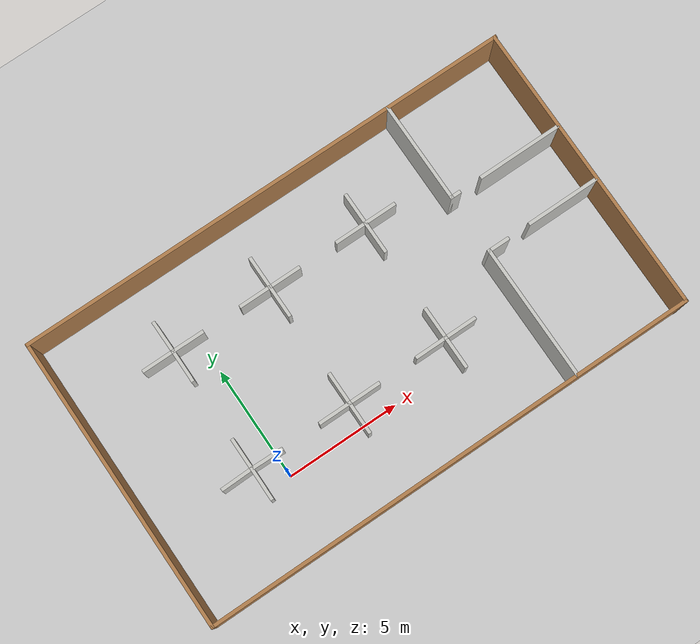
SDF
<sdf version="1.7">
 <world name="default">
  <light name="sun" type="directional">
   <pose>0 0 10 0 -0 0</pose>
   <diffuse>0.8 0.8 0.8 1</diffuse>
   <specular>0.2 0.2 0.2 1</specular>
   <attenuation>
    <range>1000</range>
    <constant>0.9</constant>
    <linear>0.01</linear>
    <quadratic>0.001</quadratic>
   </attenuation>
   <direction>-0.5 0.1 -0.9</direction>
   <spot><inner_angle>0</inner_angle><outer_angle>0</outer_angle><falloff>0</falloff></spot>
  </light>
  <model name="ground_plane">
   <static>1</static>
   <link name="link">
    <collision name="collision">
     <geometry><plane><normal>0 0 1</normal><size>100 100</size></plane></geometry>
     <surface>
      <contact><collide_bitmask>65535</collide_bitmask></contact>
      <friction><ode><mu>100</mu><mu2>50</mu2></ode></friction>
     </surface>
    </collision>
    <visual name="visual">
     <cast_shadows>0</cast_shadows>
     <geometry><plane><normal>0 0 1</normal><size>100 100</size></plane></geometry>
     <material>
      <script><uri>file://media/materials/scripts/gazebo.material</uri><name>Gazebo/Grey</name></script>
     </material>
    </visual>
   </link>
  </model>
  <gravity>0 0 -9.8</gravity>
  <magnetic_field>6e-06 2.3e-05 -4.2e-05</magnetic_field>
  <atmosphere type="adiabatic"/>
  <physics type="ode">
   <max_step_size>0.001</max_step_size>
   <real_time_factor>1</real_time_factor>
   <real_time_update_rate>1000</real_time_update_rate>
  </physics>
  <scene><ambient>0.4 0.4 0.4 1</ambient><background>0.7 0.7 0.7 1</background><shadows>1</shadows></scene>
  <audio><device>default</device></audio>
  <spherical_coordinates>
   <surface_model>EARTH_WGS84</surface_model>
   <latitude_deg>0</latitude_deg>
   <longitude_deg>0</longitude_deg>
   <elevation>0</elevation>
   <heading_deg>0</heading_deg>
  </spherical_coordinates>
  <model name="cubicaloffice">
   <pose>5.41592 3.24028 0 0 -0 0</pose>
   <link name="Wall_102">
    <collision name="Wall_102_Collision">
     <geometry><box><size>1.5 0.15 1.5</size></box></geometry>
     <pose>0 0 0.75 0 -0 0</pose>
    </collision>
    <visual name="Wall_102_Visual">
     <pose>0 0 0.75 0 -0 0</pose>
     <geometry><box><size>1.5 0.15 1.5</size></box></geometry>
     <material>
      <script><uri>file://media/materials/scripts/gazebo.material</uri><name>Gazebo/CeilingTiled</name></script>
      <ambient>1 1 1 1</ambient>
     </material>
     <meta><layer>0</layer></meta>
    </visual>
    <pose>1.91508 -2.29228 0 0 -0 0</pose>
   </link>
   <link name="Wall_103">
    <collision name="Wall_103_Collision">
     <geometry><box><size>1.5 0.15 1.5</size></box></geometry>
     <pose>0 0 0.75 0 -0 0</pose>
    </collision>
    <visual name="Wall_103_Visual">
     <pose>0 0 0.75 0 -0 0</pose>
     <geometry><box><size>1.5 0.15 1.5</size></box></geometry>
     <material>
      <script><uri>file://media/materials/scripts/gazebo.material</uri><name>Gazebo/CeilingTiled</name></script>
      <ambient>1 1 1 1</ambient>
     </material>
     <meta><layer>0</layer></meta>
    </visual>
    <pose>2.59009 -1.61728 0 0 -0 1.5708</pose>
   </link>
   <link name="Wall_105">
    <collision name="Wall_105_Collision">
     <geometry><box><size>1.5 0.15 1.5</size></box></geometry>
     <pose>0 0 0.75 0 -0 0</pose>
    </collision>
    <visual name="Wall_105_Visual">
     <pose>0 0 0.75 0 -0 0</pose>
     <geometry><box><size>1.5 0.15 1.5</size></box></geometry>
     <material>
      <script><uri>file://media/materials/scripts/gazebo.material</uri><name>Gazebo/CeilingTiled</name></script>
      <ambient>1 1 1 1</ambient>
     </material>
     <meta><layer>0</layer></meta>
    </visual>
    <pose>3.26509 -2.29228 0 0 -0 0</pose>
   </link>
   <link name="Wall_107">
    <collision name="Wall_107_Collision">
     <geometry><box><size>1.5 0.15 1.5</size></box></geometry>
     <pose>0 0 0.75 0 -0 0</pose>
    </collision>
    <visual name="Wall_107_Visual">
     <pose>0 0 0.75 0 -0 0</pose>
     <geometry><box><size>1.5 0.15 1.5</size></box></geometry>
     <material>
      <script><uri>file://media/materials/scripts/gazebo.material</uri><name>Gazebo/CeilingTiled</name></script>
      <ambient>1 1 1 1</ambient>
     </material>
     <meta><layer>0</layer></meta>
    </visual>
    <pose>2.59009 -2.96728 0 0 -0 -1.5708</pose>
   </link>
   <link name="Wall_120">
    <collision name="Wall_120_Collision">
     <geometry><box><size>6 0.15 2.5</size></box></geometry>
     <pose>0 0 1.25 0 -0 0</pose>
    </collision>
    <visual name="Wall_120_Visual">
     <pose>0 0 1.25 0 -0 0</pose>
     <geometry><box><size>6 0.15 2.5</size></box></geometry>
     <material>
      <script><uri>file://media/materials/scripts/gazebo.material</uri><name>Gazebo/CeilingTiled</name></script>
      <ambient>0.921569 0.807843 0.615686 1</ambient>
     </material>
     <meta><layer>0</layer></meta>
    </visual>
    <pose>5.7963 -3.47636 0 0 -0 -1.5708</pose>
   </link>
   <link name="Wall_13">
    <collision name="Wall_13_Collision">
     <geometry><box><size>22.0074 0.15 2.5</size></box></geometry>
     <pose>0 0 1.25 0 -0 0</pose>
    </collision>
    <visual name="Wall_13_Visual">
     <pose>0 0 1.25 0 -0 0</pose>
     <geometry><box><size>22.0074 0.15 2.5</size></box></geometry>
     <material>
      <script><uri>file://media/materials/scripts/gazebo.material</uri><name>Gazebo/Wood</name></script>
      <ambient>1 1 1 1</ambient>
     </material>
     <meta><layer>0</layer></meta>
    </visual>
    <pose>-0.024022 -6.42496 0 0 -0 0.000198</pose>
   </link>
   <link name="Wall_130">
    <collision name="Wall_130_Collision">
     <geometry><box><size>4.5 0.15 2.5</size></box></geometry>
     <pose>0 0 1.25 0 -0 0</pose>
    </collision>
    <visual name="Wall_130_Visual">
     <pose>0 0 1.25 0 -0 0</pose>
     <geometry><box><size>4.5 0.15 2.5</size></box></geometry>
     <material>
      <script><uri>file://media/materials/scripts/gazebo.material</uri><name>Gazebo/CeilingTiled</name></script>
      <ambient>0.921569 0.807843 0.615686 1</ambient>
     </material>
     <meta><layer>0</layer></meta>
    </visual>
    <pose>5.80695 4.20379 0 0 -0 -1.5708</pose>
   </link>
   <link name="Wall_132">
    <collision name="Wall_132_Collision">
     <geometry><box><size>0.5 0.15 2.5</size></box></geometry>
     <pose>0 0 1.25 0 -0 0</pose>
    </collision>
    <visual name="Wall_132_Visual">
     <pose>0 0 1.25 0 -0 0</pose>
     <geometry><box><size>0.5 0.15 2.5</size></box></geometry>
     <material>
      <script><uri>file://media/materials/scripts/gazebo.material</uri><name>Gazebo/CeilingTiled</name></script>
      <ambient>0.921569 0.807843 0.615686 1</ambient>
     </material>
     <meta><layer>0</layer></meta>
    </visual>
    <pose>5.98195 2.02879 0 0 -0 0</pose>
   </link>
   <link name="Wall_135">
    <collision name="Wall_135_Collision">
     <geometry><box><size>3.75 0.15 2.5</size></box></geometry>
     <pose>0 0 1.25 0 -0 0</pose>
    </collision>
    <visual name="Wall_135_Visual">
     <pose>0 0 1.25 0 -0 0</pose>
     <geometry><box><size>3.75 0.15 2.5</size></box></geometry>
     <material>
      <script><uri>file://media/materials/scripts/gazebo.material</uri><name>Gazebo/CeilingTiled</name></script>
      <ambient>0.921569 0.807843 0.615686 1</ambient>
     </material>
     <meta><layer>0</layer></meta>
    </visual>
    <pose>9.05695 2.02879 0 0 -0 0</pose>
   </link>
   <link name="Wall_137">
    <collision name="Wall_137_Collision">
     <geometry><box><size>1 0.15 2.5</size></box></geometry>
     <pose>0 0 1.25 0 -0 0</pose>
    </collision>
    <visual name="Wall_137_Visual">
     <pose>0 0 1.25 0 -0 0</pose>
     <geometry><box><size>1 0.15 2.5</size></box></geometry>
     <material>
      <script><uri>file://media/materials/scripts/gazebo.material</uri><name>Gazebo/CeilingTiled</name></script>
      <ambient>0.921569 0.807843 0.615686 1</ambient>
     </material>
     <meta><layer>0</layer></meta>
    </visual>
    <pose>6.2213 -0.55136 0 0 -0 0</pose>
   </link>
   <link name="Wall_139">
    <collision name="Wall_139_Collision">
     <geometry><box><size>3.25 0.15 2.5</size></box></geometry>
     <pose>0 0 1.25 0 -0 0</pose>
    </collision>
    <visual name="Wall_139_Visual">
     <pose>0 0 1.25 0 -0 0</pose>
     <geometry><box><size>3.25 0.15 2.5</size></box></geometry>
     <material>
      <script><uri>file://media/materials/scripts/gazebo.material</uri><name>Gazebo/CeilingTiled</name></script>
      <ambient>0.921569 0.807843 0.615686 1</ambient>
     </material>
     <meta><layer>0</layer></meta>
    </visual>
    <pose>9.2963 -0.55136 0 0 -0 0</pose>
   </link>
   <link name="Wall_15">
    <collision name="Wall_15_Collision">
     <geometry><box><size>13.0152 0.15 2.5</size></box></geometry>
     <pose>0 0 1.25 0 -0 0</pose>
    </collision>
    <visual name="Wall_15_Visual">
     <pose>0 0 1.25 0 -0 0</pose>
     <geometry><box><size>13.0152 0.15 2.5</size></box></geometry>
     <material>
      <script><uri>file://media/materials/scripts/gazebo.material</uri><name>Gazebo/Wood</name></script>
      <ambient>1 1 1 1</ambient>
     </material>
     <meta><layer>0</layer></meta>
    </visual>
    <pose>-10.9659 0.005484 0 0 -0 1.5708</pose>
   </link>
   <link name="Wall_16">
    <collision name="Wall_16_Collision">
     <geometry><box><size>22.0686 0.15 2.5</size></box></geometry>
     <pose>0 0 1.25 0 -0 0</pose>
    </collision>
    <visual name="Wall_16_Visual">
     <pose>0 0 1.25 0 -0 0</pose>
     <geometry><box><size>22.0686 0.15 2.5</size></box></geometry>
     <material>
      <script><uri>file://media/materials/scripts/gazebo.material</uri><name>Gazebo/Wood</name></script>
      <ambient>1 1 1 1</ambient>
     </material>
     <meta><layer>0</layer></meta>
    </visual>
    <pose>0.006568 6.42496 0 0 -0 -0.001198</pose>
   </link>
   <link name="Wall_17">
    <collision name="Wall_17_Collision">
     <geometry><box><size>13 0.15 2.5</size></box></geometry>
     <pose>0 0 1.25 0 -0 0</pose>
    </collision>
    <visual name="Wall_17_Visual">
     <pose>0 0 1.25 0 -0 0</pose>
     <geometry><box><size>13 0.15 2.5</size></box></geometry>
     <material>
      <script><uri>file://media/materials/scripts/gazebo.material</uri><name>Gazebo/Wood</name></script>
      <ambient>1 1 1 1</ambient>
     </material>
     <meta><layer>0</layer></meta>
    </visual>
    <pose>10.9353 -0.013178 0 0 -0 -1.5708</pose>
   </link>
   <link name="Wall_53">
    <collision name="Wall_53_Collision">
     <geometry><box><size>1.49103 0.15 1.5</size></box></geometry>
     <pose>0 0 0.75 0 -0 0</pose>
    </collision>
    <visual name="Wall_53_Visual">
     <pose>0 0 0.75 0 -0 0</pose>
     <geometry><box><size>1.49103 0.15 1.5</size></box></geometry>
     <material>
      <script><uri>file://media/materials/scripts/gazebo.material</uri><name>Gazebo/CeilingTiled</name></script>
      <ambient>1 1 1 1</ambient>
     </material>
     <meta><layer>0</layer></meta>
    </visual>
    <pose>-6.50542 3.93722 0 0 -0 -1.56408</pose>
   </link>
   <link name="Wall_58">
    <collision name="Wall_58_Collision">
     <geometry><box><size>1.49103 0.15 1.5</size></box></geometry>
     <pose>0 0 0.75 0 -0 0</pose>
    </collision>
    <visual name="Wall_58_Visual">
     <pose>0 0 0.75 0 -0 0</pose>
     <geometry><box><size>1.49103 0.15 1.5</size></box></geometry>
     <material>
      <script><uri>file://media/materials/scripts/gazebo.material</uri><name>Gazebo/CeilingTiled</name></script>
      <ambient>1 1 1 1</ambient>
     </material>
     <meta><layer>0</layer></meta>
    </visual>
    <pose>-5.83042 3.26222 0 0 -0 -0.006711</pose>
   </link>
   <link name="Wall_60">
    <collision name="Wall_60_Collision">
     <geometry><box><size>1.50871 0.15 1.5</size></box></geometry>
     <pose>0 0 0.75 0 -0 0</pose>
    </collision>
    <visual name="Wall_60_Visual">
     <pose>0 0 0.75 0 -0 0</pose>
     <geometry><box><size>1.50871 0.15 1.5</size></box></geometry>
     <material>
      <script><uri>file://media/materials/scripts/gazebo.material</uri><name>Gazebo/CeilingTiled</name></script>
      <ambient>1 1 1 1</ambient>
     </material>
     <meta><layer>0</layer></meta>
    </visual>
    <pose>-6.50542 2.58722 0 0 -0 -1.57742</pose>
   </link>
   <link name="Wall_62">
    <collision name="Wall_62_Collision">
     <geometry><box><size>1.50042 0.15 1.5</size></box></geometry>
     <pose>0 0 0.75 0 -0 0</pose>
    </collision>
    <visual name="Wall_62_Visual">
     <pose>0 0 0.75 0 -0 0</pose>
     <geometry><box><size>1.50042 0.15 1.5</size></box></geometry>
     <material>
      <script><uri>file://media/materials/scripts/gazebo.material</uri><name>Gazebo/CeilingTiled</name></script>
      <ambient>1 1 1 1</ambient>
     </material>
     <meta><layer>0</layer></meta>
    </visual>
    <pose>-7.17642 3.26672 0 0 -0 3.14159</pose>
   </link>
   <link name="Wall_65">
    <collision name="Wall_65_Collision">
     <geometry><box><size>1.5 0.15 1.5</size></box></geometry>
     <pose>0 0 0.75 0 -0 0</pose>
    </collision>
    <visual name="Wall_65_Visual">
     <pose>0 0 0.75 0 -0 0</pose>
     <geometry><box><size>1.5 0.15 1.5</size></box></geometry>
     <material>
      <script><uri>file://media/materials/scripts/gazebo.material</uri><name>Gazebo/CeilingTiled</name></script>
      <ambient>1 1 1 1</ambient>
     </material>
     <meta><layer>0</layer></meta>
    </visual>
    <pose>-2.63491 3.25772 0 0 -0 0</pose>
   </link>
   <link name="Wall_66">
    <collision name="Wall_66_Collision">
     <geometry><box><size>1.5 0.15 1.5</size></box></geometry>
     <pose>0 0 0.75 0 -0 0</pose>
    </collision>
    <visual name="Wall_66_Visual">
     <pose>0 0 0.75 0 -0 0</pose>
     <geometry><box><size>1.5 0.15 1.5</size></box></geometry>
     <material>
      <script><uri>file://media/materials/scripts/gazebo.material</uri><name>Gazebo/CeilingTiled</name></script>
      <ambient>1 1 1 1</ambient>
     </material>
     <meta><layer>0</layer></meta>
    </visual>
    <pose>-1.95992 2.58272 0 0 -0 -1.5708</pose>
   </link>
   <link name="Wall_68">
    <collision name="Wall_68_Collision">
     <geometry><box><size>1.5 0.15 1.5</size></box></geometry>
     <pose>0 0 0.75 0 -0 0</pose>
    </collision>
    <visual name="Wall_68_Visual">
     <pose>0 0 0.75 0 -0 0</pose>
     <geometry><box><size>1.5 0.15 1.5</size></box></geometry>
     <material>
      <script><uri>file://media/materials/scripts/gazebo.material</uri><name>Gazebo/CeilingTiled</name></script>
      <ambient>1 1 1 1</ambient>
     </material>
     <meta><layer>0</layer></meta>
    </visual>
    <pose>-1.95992 3.93272 0 0 -0 1.5708</pose>
   </link>
   <link name="Wall_70">
    <collision name="Wall_70_Collision">
     <geometry><box><size>1.5 0.15 1.5</size></box></geometry>
     <pose>0 0 0.75 0 -0 0</pose>
    </collision>
    <visual name="Wall_70_Visual">
     <pose>0 0 0.75 0 -0 0</pose>
     <geometry><box><size>1.5 0.15 1.5</size></box></geometry>
     <material>
      <script><uri>file://media/materials/scripts/gazebo.material</uri><name>Gazebo/CeilingTiled</name></script>
      <ambient>1 1 1 1</ambient>
     </material>
     <meta><layer>0</layer></meta>
    </visual>
    <pose>-1.28492 3.25772 0 0 -0 0</pose>
   </link>
   <link name="Wall_74">
    <collision name="Wall_74_Collision">
     <geometry><box><size>1.5 0.15 1.5</size></box></geometry>
     <pose>0 0 0.75 0 -0 0</pose>
    </collision>
    <visual name="Wall_74_Visual">
     <pose>0 0 0.75 0 -0 0</pose>
     <geometry><box><size>1.5 0.15 1.5</size></box></geometry>
     <material>
      <script><uri>file://media/materials/scripts/gazebo.material</uri><name>Gazebo/CeilingTiled</name></script>
      <ambient>1 1 1 1</ambient>
     </material>
     <meta><layer>0</layer></meta>
    </visual>
    <pose>1.91508 3.25772 0 0 -0 0</pose>
   </link>
   <link name="Wall_75">
    <collision name="Wall_75_Collision">
     <geometry><box><size>1.5 0.15 1.5</size></box></geometry>
     <pose>0 0 0.75 0 -0 0</pose>
    </collision>
    <visual name="Wall_75_Visual">
     <pose>0 0 0.75 0 -0 0</pose>
     <geometry><box><size>1.5 0.15 1.5</size></box></geometry>
     <material>
      <script><uri>file://media/materials/scripts/gazebo.material</uri><name>Gazebo/CeilingTiled</name></script>
      <ambient>1 1 1 1</ambient>
     </material>
     <meta><layer>0</layer></meta>
    </visual>
    <pose>2.59009 2.58272 0 0 -0 -1.5708</pose>
   </link>
   <link name="Wall_77">
    <collision name="Wall_77_Collision">
     <geometry><box><size>1.5 0.15 1.5</size></box></geometry>
     <pose>0 0 0.75 0 -0 0</pose>
    </collision>
    <visual name="Wall_77_Visual">
     <pose>0 0 0.75 0 -0 0</pose>
     <geometry><box><size>1.5 0.15 1.5</size></box></geometry>
     <material>
      <script><uri>file://media/materials/scripts/gazebo.material</uri><name>Gazebo/CeilingTiled</name></script>
      <ambient>1 1 1 1</ambient>
     </material>
     <meta><layer>0</layer></meta>
    </visual>
    <pose>2.59009 3.93272 0 0 -0 1.5708</pose>
   </link>
   <link name="Wall_79">
    <collision name="Wall_79_Collision">
     <geometry><box><size>1.5 0.15 1.5</size></box></geometry>
     <pose>0 0 0.75 0 -0 0</pose>
    </collision>
    <visual name="Wall_79_Visual">
     <pose>0 0 0.75 0 -0 0</pose>
     <geometry><box><size>1.5 0.15 1.5</size></box></geometry>
     <material>
      <script><uri>file://media/materials/scripts/gazebo.material</uri><name>Gazebo/CeilingTiled</name></script>
      <ambient>1 1 1 1</ambient>
     </material>
     <meta><layer>0</layer></meta>
    </visual>
    <pose>3.26509 3.25772 0 0 -0 0</pose>
   </link>
   <link name="Wall_82">
    <collision name="Wall_82_Collision">
     <geometry><box><size>1.5 0.15 1.5</size></box></geometry>
     <pose>0 0 0.75 0 -0 0</pose>
    </collision>
    <visual name="Wall_82_Visual">
     <pose>0 0 0.75 0 -0 0</pose>
     <geometry><box><size>1.5 0.15 1.5</size></box></geometry>
     <material>
      <script><uri>file://media/materials/scripts/gazebo.material</uri><name>Gazebo/CeilingTiled</name></script>
      <ambient>1 1 1 1</ambient>
     </material>
     <meta><layer>0</layer></meta>
    </visual>
    <pose>-1.95992 -1.61728 0 0 -0 -1.5708</pose>
   </link>
   <link name="Wall_83">
    <collision name="Wall_83_Collision">
     <geometry><box><size>1.5 0.15 1.5</size></box></geometry>
     <pose>0 0 0.75 0 -0 0</pose>
    </collision>
    <visual name="Wall_83_Visual">
     <pose>0 0 0.75 0 -0 0</pose>
     <geometry><box><size>1.5 0.15 1.5</size></box></geometry>
     <material>
      <script><uri>file://media/materials/scripts/gazebo.material</uri><name>Gazebo/CeilingTiled</name></script>
      <ambient>1 1 1 1</ambient>
     </material>
     <meta><layer>0</layer></meta>
    </visual>
    <pose>-2.63491 -2.29228 0 0 -0 3.14159</pose>
   </link>
   <link name="Wall_85">
    <collision name="Wall_85_Collision">
     <geometry><box><size>1.5 0.15 1.5</size></box></geometry>
     <pose>0 0 0.75 0 -0 0</pose>
    </collision>
    <visual name="Wall_85_Visual">
     <pose>0 0 0.75 0 -0 0</pose>
     <geometry><box><size>1.5 0.15 1.5</size></box></geometry>
     <material>
      <script><uri>file://media/materials/scripts/gazebo.material</uri><name>Gazebo/CeilingTiled</name></script>
      <ambient>1 1 1 1</ambient>
     </material>
     <meta><layer>0</layer></meta>
    </visual>
    <pose>-1.95992 -2.96728 0 0 -0 -1.5708</pose>
   </link>
   <link name="Wall_87">
    <collision name="Wall_87_Collision">
     <geometry><box><size>1.5 0.15 1.5</size></box></geometry>
     <pose>0 0 0.75 0 -0 0</pose>
    </collision>
    <visual name="Wall_87_Visual">
     <pose>0 0 0.75 0 -0 0</pose>
     <geometry><box><size>1.5 0.15 1.5</size></box></geometry>
     <material>
      <script><uri>file://media/materials/scripts/gazebo.material</uri><name>Gazebo/CeilingTiled</name></script>
      <ambient>1 1 1 1</ambient>
     </material>
     <meta><layer>0</layer></meta>
    </visual>
    <pose>-1.28492 -2.29228 0 0 -0 0</pose>
   </link>
   <link name="Wall_90">
    <collision name="Wall_90_Collision">
     <geometry><box><size>1.5 0.15 1.5</size></box></geometry>
     <pose>0 0 0.75 0 -0 0</pose>
    </collision>
    <visual name="Wall_90_Visual">
     <pose>0 0 0.75 0 -0 0</pose>
     <geometry><box><size>1.5 0.15 1.5</size></box></geometry>
     <material>
      <script><uri>file://media/materials/scripts/gazebo.material</uri><name>Gazebo/CeilingTiled</name></script>
      <ambient>1 1 1 1</ambient>
     </material>
     <meta><layer>0</layer></meta>
    </visual>
    <pose>-5.82191 -2.27906 0 0 -0 3.122</pose>
   </link>
   <link name="Wall_91">
    <collision name="Wall_91_Collision">
     <geometry><box><size>1.50006 0.15 1.5</size></box></geometry>
     <pose>0 0 0.75 0 -0 0</pose>
    </collision>
    <visual name="Wall_91_Visual">
     <pose>0 0 0.75 0 -0 0</pose>
     <geometry><box><size>1.50006 0.15 1.5</size></box></geometry>
     <material>
      <script><uri>file://media/materials/scripts/gazebo.material</uri><name>Gazebo/CeilingTiled</name></script>
      <ambient>1 1 1 1</ambient>
     </material>
     <meta><layer>0</layer></meta>
    </visual>
    <pose>-6.50342 -2.95405 0 0 -0 -1.58043</pose>
   </link>
   <link name="Wall_93">
    <collision name="Wall_93_Collision">
     <geometry><box><size>1.47355 0.15 1.5</size></box></geometry>
     <pose>0 0 0.75 0 -0 0</pose>
    </collision>
    <visual name="Wall_93_Visual">
     <pose>0 0 0.75 0 -0 0</pose>
     <geometry><box><size>1.47355 0.15 1.5</size></box></geometry>
     <material>
      <script><uri>file://media/materials/scripts/gazebo.material</uri><name>Gazebo/CeilingTiled</name></script>
      <ambient>1 1 1 1</ambient>
     </material>
     <meta><layer>0</layer></meta>
    </visual>
    <pose>-6.49692 -1.60406 0 0 -0 1.5708</pose>
   </link>
   <link name="Wall_95">
    <collision name="Wall_95_Collision">
     <geometry><box><size>1.5 0.15 1.5</size></box></geometry>
     <pose>0 0 0.75 0 -0 0</pose>
    </collision>
    <visual name="Wall_95_Visual">
     <pose>0 0 0.75 0 -0 0</pose>
     <geometry><box><size>1.5 0.15 1.5</size></box></geometry>
     <material>
      <script><uri>file://media/materials/scripts/gazebo.material</uri><name>Gazebo/CeilingTiled</name></script>
      <ambient>1 1 1 1</ambient>
     </material>
     <meta><layer>0</layer></meta>
    </visual>
    <pose>-7.17192 -2.27906 0 0 -0 -3.122</pose>
   </link>
   <static>1</static>
  </model>
 </world>
</sdf>
